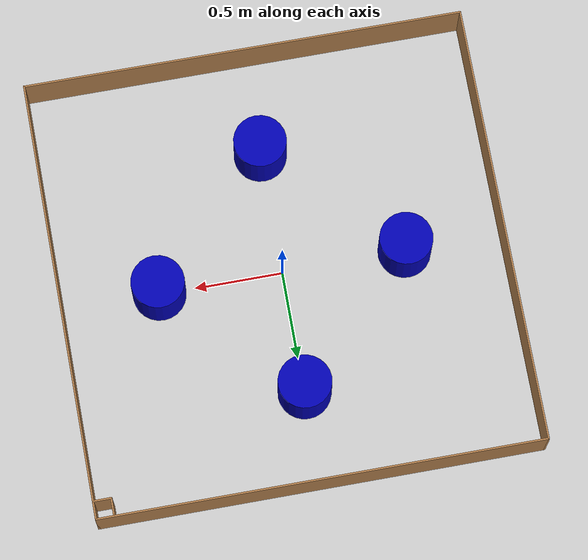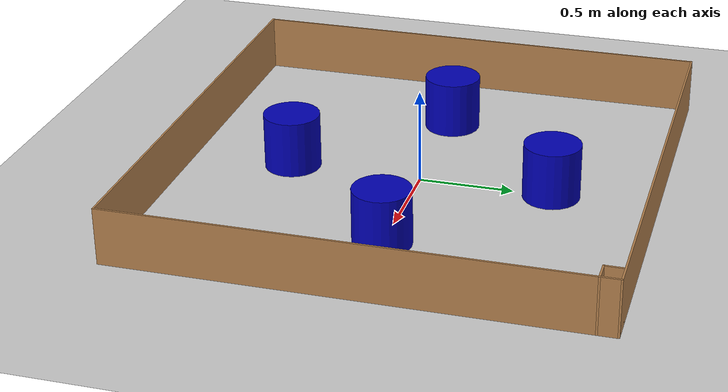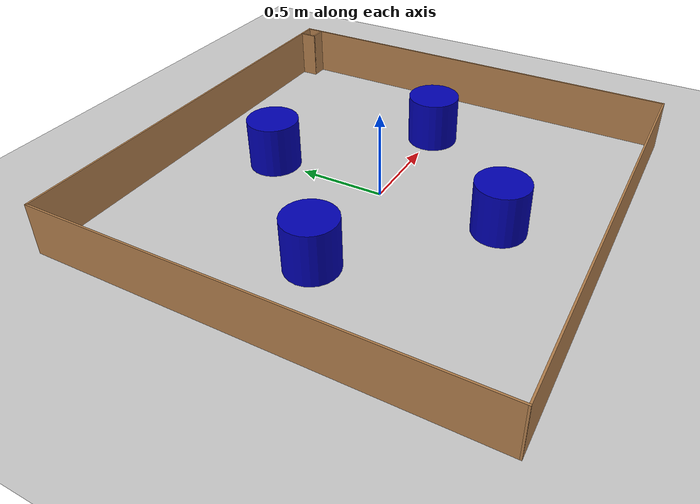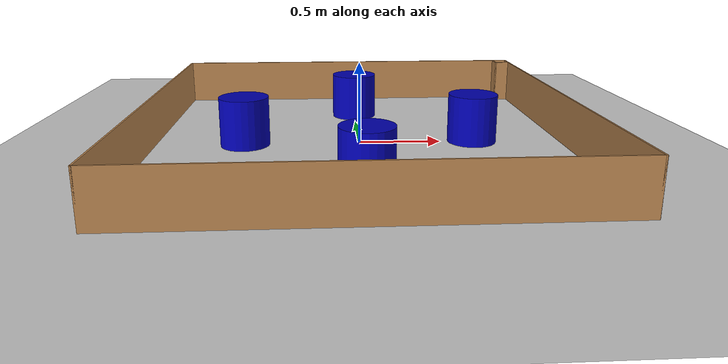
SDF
<sdf version="1.6">
 <world name="default">
  <light name="sun" type="directional">
   <pose>0 0 10 0 -0 0</pose>
   <diffuse>0.8 0.8 0.8 1</diffuse>
   <specular>0.1 0.1 0.1 1</specular>
   <attenuation>
    <range>1000</range>
    <constant>0.9</constant>
    <linear>0.01</linear>
    <quadratic>0.001</quadratic>
   </attenuation>
   <direction>-0.5 0.5 -1</direction>
  </light>
  <model name="ground_plane">
   <static>1</static>
   <link name="link">
    <collision name="collision">
     <geometry><plane><normal>0 0 1</normal><size>100 100</size></plane></geometry>
     <surface><friction><ode><mu>100</mu><mu2>50</mu2></ode></friction></surface>
    </collision>
    <visual name="visual">
     <cast_shadows>0</cast_shadows>
     <geometry><plane><normal>0 0 1</normal><size>100 100</size></plane></geometry>
     <material>
      <script><uri>file://media/materials/scripts/gazebo.material</uri><name>Gazebo/Grey</name></script>
     </material>
    </visual>
   </link>
  </model>
  <gravity>0 0 -9.8</gravity>
  <magnetic_field>6e-06 2.3e-05 -4.2e-05</magnetic_field>
  <atmosphere type="adiabatic"/>
  <physics name="default_physics" default="0" type="ode">
   <max_step_size>0.001</max_step_size>
   <real_time_factor>1</real_time_factor>
   <real_time_update_rate>1000</real_time_update_rate>
  </physics>
  <scene><ambient>0.4 0.4 0.4 1</ambient><background>0.7 0.7 0.7 1</background><shadows>1</shadows></scene>
  <spherical_coordinates>
   <surface_model>EARTH_WGS84</surface_model>
   <latitude_deg>0</latitude_deg>
   <longitude_deg>0</longitude_deg>
   <elevation>0</elevation>
   <heading_deg>0</heading_deg>
  </spherical_coordinates>
  <model name="ParedOrientada">
   <link name="Wall_22">
    <collision name="Wall_22_Collision">
     <geometry><box><size>2.51 0.01 0.3</size></box></geometry>
     <pose>0 0 0.15 0 -0 0</pose>
    </collision>
    <visual name="Wall_22_Visual">
     <pose>0 0 0.15 0 -0 0</pose>
     <geometry><box><size>2.51 0.01 0.3</size></box></geometry>
     <material>
      <script><uri>file://media/materials/scripts/gazebo.material</uri><name>Gazebo/Wood</name></script>
      <ambient>1 1 1 1</ambient>
     </material>
    </visual>
    <pose>-1.25 0 0 0 -0 1.5708</pose>
   </link>
   <link name="Wall_24">
    <collision name="Wall_24_Collision">
     <geometry><box><size>2.51 0.01 0.3</size></box></geometry>
     <pose>0 0 0.15 0 -0 0</pose>
    </collision>
    <visual name="Wall_24_Visual">
     <pose>0 0 0.15 0 -0 0</pose>
     <geometry><box><size>2.51 0.01 0.3</size></box></geometry>
     <material>
      <script><uri>file://media/materials/scripts/gazebo.material</uri><name>Gazebo/Wood</name></script>
      <ambient>1 1 1 1</ambient>
     </material>
    </visual>
    <pose>0 -1.25 0 0 -0 0</pose>
   </link>
   <link name="Wall_28">
    <collision name="Wall_28_Collision">
     <geometry><box><size>2.51 0.01 0.3</size></box></geometry>
     <pose>0 0 0.15 0 -0 0</pose>
    </collision>
    <visual name="Wall_28_Visual">
     <pose>0 0 0.15 0 -0 0</pose>
     <geometry><box><size>2.51 0.01 0.3</size></box></geometry>
     <material>
      <script><uri>file://media/materials/scripts/gazebo.material</uri><name>Gazebo/Wood</name></script>
      <ambient>1 1 1 1</ambient>
     </material>
    </visual>
    <pose>0 1.25 0 0 -0 0</pose>
   </link>
   <link name="Wall_32">
    <collision name="Wall_32_Collision">
     <geometry><box><size>2.51 0.01 0.3</size></box></geometry>
     <pose>0 0 0.15 0 -0 0</pose>
    </collision>
    <visual name="Wall_32_Visual">
     <pose>0 0 0.15 0 -0 0</pose>
     <geometry><box><size>2.51 0.01 0.3</size></box></geometry>
     <material>
      <script><uri>file://media/materials/scripts/gazebo.material</uri><name>Gazebo/Wood</name></script>
      <ambient>1 1 1 1</ambient>
     </material>
    </visual>
    <pose>1.25 0 0 0 -0 1.5708</pose>
   </link>
   <link name="Wall_34">
    <collision name="Wall_34_Collision">
     <geometry><box><size>0.11 0.01 0.3</size></box></geometry>
     <pose>0 0 0.15 0 -0 0</pose>
    </collision>
    <visual name="Wall_34_Visual">
     <pose>0 0 0.15 0 -0 0</pose>
     <geometry><box><size>0.11 0.01 0.3</size></box></geometry>
     <material>
      <script><uri>file://media/materials/scripts/gazebo.material</uri><name>Gazebo/Wood</name></script>
      <ambient>1 1 1 1</ambient>
     </material>
    </visual>
    <pose>1.15 1.2 0 0 0 -1.5708</pose>
   </link>
   <link name="Wall_36">
    <collision name="Wall_36_Collision">
     <geometry><box><size>0.11 0.01 0.3</size></box></geometry>
     <pose>0 0 0.15 0 -0 0</pose>
    </collision>
    <visual name="Wall_36_Visual">
     <pose>0 0 0.15 0 -0 0</pose>
     <geometry><box><size>0.11 0.01 0.3</size></box></geometry>
     <material>
      <script><uri>file://media/materials/scripts/gazebo.material</uri><name>Gazebo/Wood</name></script>
      <ambient>1 1 1 1</ambient>
     </material>
    </visual>
    <pose>1.2 1.15 0 0 -0 0</pose>
   </link>
   <static>1</static>
  </model>
  <model name="Cylinder_2">
   <link name="link">
    <inertial>
     <mass>0.1</mass>
     <inertia><ixx>0.145833</ixx><ixy>0</ixy><ixz>0</ixz><iyy>0.145833</iyy><iyz>0</iyz><izz>0.125</izz></inertia>
    </inertial>
    <visual name="visual">
     <geometry><cylinder><radius>0.15</radius><length>0.3</length></cylinder></geometry>
     <material>
      <script><name>Gazebo/Grey</name><uri>file://media/materials/scripts/gazebo.material</uri></script>
      <ambient>0.3 0.3 0.3 1</ambient>
      <diffuse>0 0 0.7 1</diffuse>
      <specular>0.01 0.01 0.01 1</specular>
      <emissive>0 0 0 1</emissive>
      <shader type="vertex"><normal_map>__default__</normal_map></shader>
     </material>
    </visual>
    <collision name="collision">
     <geometry><cylinder><radius>0.15</radius><length>0.3</length></cylinder></geometry>
     <surface>
      <friction>
       <ode><mu>1</mu><mu2>1</mu2><fdir1>0 0 0</fdir1><slip1>0</slip1><slip2>0</slip2></ode>
       <torsional>
        <coefficient>1</coefficient>
        <patch_radius>0</patch_radius>
        <surface_radius>0</surface_radius>
        <use_patch_radius>1</use_patch_radius>
        <ode><slip>0</slip></ode>
       </torsional>
      </friction>
      <bounce><restitution_coefficient>0</restitution_coefficient><threshold>1e+06</threshold></bounce>
      <contact>
       <collide_without_contact>0</collide_without_contact>
       <collide_without_contact_bitmask>1</collide_without_contact_bitmask>
       <collide_bitmask>1</collide_bitmask>
       <ode>
        <soft_cfm>0</soft_cfm>
        <soft_erp>0.2</soft_erp>
        <kp>1e+13</kp>
        <kd>1</kd>
        <max_vel>0.01</max_vel>
        <min_depth>0</min_depth>
       </ode>
       <bullet>
        <split_impulse>1</split_impulse>
        <split_impulse_penetration_threshold>-0.01</split_impulse_penetration_threshold>
        <soft_cfm>0</soft_cfm>
        <soft_erp>0.2</soft_erp>
        <kp>1e+13</kp>
        <kd>1</kd>
       </bullet>
      </contact>
     </surface>
    </collision>
   </link>
   <static>0</static>
   <pose>0 0.7 0.149994 0 -0 6e-06</pose>
  </model>
  <model name="Cylinder_2_clone">
   <link name="link">
    <inertial>
     <mass>0.1</mass>
     <inertia><ixx>0.145833</ixx><ixy>0</ixy><ixz>0</ixz><iyy>0.145833</iyy><iyz>0</iyz><izz>0.125</izz></inertia>
    </inertial>
    <visual name="visual">
     <geometry><cylinder><radius>0.15</radius><length>0.3</length></cylinder></geometry>
     <material>
      <script><name>Gazebo/Grey</name><uri>file://media/materials/scripts/gazebo.material</uri></script>
      <ambient>0.3 0.3 0.3 1</ambient>
      <diffuse>0 0 0.7 1</diffuse>
      <specular>0.01 0.01 0.01 1</specular>
      <emissive>0 0 0 1</emissive>
      <shader type="vertex"><normal_map>__default__</normal_map></shader>
     </material>
    </visual>
    <collision name="collision">
     <geometry><cylinder><radius>0.15</radius><length>0.3</length></cylinder></geometry>
     <surface>
      <friction>
       <ode><mu>1</mu><mu2>1</mu2><fdir1>0 0 0</fdir1><slip1>0</slip1><slip2>0</slip2></ode>
       <torsional>
        <coefficient>1</coefficient>
        <patch_radius>0</patch_radius>
        <surface_radius>0</surface_radius>
        <use_patch_radius>1</use_patch_radius>
        <ode><slip>0</slip></ode>
       </torsional>
      </friction>
      <bounce><restitution_coefficient>0</restitution_coefficient><threshold>1e+06</threshold></bounce>
      <contact>
       <collide_without_contact>0</collide_without_contact>
       <collide_without_contact_bitmask>1</collide_without_contact_bitmask>
       <collide_bitmask>1</collide_bitmask>
       <ode>
        <soft_cfm>0</soft_cfm>
        <soft_erp>0.2</soft_erp>
        <kp>1e+13</kp>
        <kd>1</kd>
        <max_vel>0.01</max_vel>
        <min_depth>0</min_depth>
       </ode>
       <bullet>
        <split_impulse>1</split_impulse>
        <split_impulse_penetration_threshold>-0.01</split_impulse_penetration_threshold>
        <soft_cfm>0</soft_cfm>
        <soft_erp>0.2</soft_erp>
        <kp>1e+13</kp>
        <kd>1</kd>
       </bullet>
      </contact>
     </surface>
    </collision>
   </link>
   <static>0</static>
   <pose>0 -0.7 0.149998 0 -0 9e-06</pose>
  </model>
  <model name="Cylinder_2_clone_clone">
   <link name="link">
    <inertial>
     <mass>0.1</mass>
     <inertia><ixx>0.145833</ixx><ixy>0</ixy><ixz>0</ixz><iyy>0.145833</iyy><iyz>0</iyz><izz>0.125</izz></inertia>
    </inertial>
    <visual name="visual">
     <geometry><cylinder><radius>0.15</radius><length>0.3</length></cylinder></geometry>
     <material>
      <script><name>Gazebo/Grey</name><uri>file://media/materials/scripts/gazebo.material</uri></script>
      <ambient>0.3 0.3 0.3 1</ambient>
      <diffuse>0 0 0.7 1</diffuse>
      <specular>0.01 0.01 0.01 1</specular>
      <emissive>0 0 0 1</emissive>
      <shader type="vertex"><normal_map>__default__</normal_map></shader>
     </material>
    </visual>
    <collision name="collision">
     <geometry><cylinder><radius>0.15</radius><length>0.3</length></cylinder></geometry>
     <surface>
      <friction>
       <ode><mu>1</mu><mu2>1</mu2><fdir1>0 0 0</fdir1><slip1>0</slip1><slip2>0</slip2></ode>
       <torsional>
        <coefficient>1</coefficient>
        <patch_radius>0</patch_radius>
        <surface_radius>0</surface_radius>
        <use_patch_radius>1</use_patch_radius>
        <ode><slip>0</slip></ode>
       </torsional>
      </friction>
      <bounce><restitution_coefficient>0</restitution_coefficient><threshold>1e+06</threshold></bounce>
      <contact>
       <collide_without_contact>0</collide_without_contact>
       <collide_without_contact_bitmask>1</collide_without_contact_bitmask>
       <collide_bitmask>1</collide_bitmask>
       <ode>
        <soft_cfm>0</soft_cfm>
        <soft_erp>0.2</soft_erp>
        <kp>1e+13</kp>
        <kd>1</kd>
        <max_vel>0.01</max_vel>
        <min_depth>0</min_depth>
       </ode>
       <bullet>
        <split_impulse>1</split_impulse>
        <split_impulse_penetration_threshold>-0.01</split_impulse_penetration_threshold>
        <soft_cfm>0</soft_cfm>
        <soft_erp>0.2</soft_erp>
        <kp>1e+13</kp>
        <kd>1</kd>
       </bullet>
      </contact>
     </surface>
    </collision>
   </link>
   <static>0</static>
   <pose>-0.7 0 0.149997 1e-06 -0 9e-06</pose>
  </model>
  <model name="Cylinder_2_clone_clone_clone">
   <link name="link">
    <inertial>
     <mass>0.1</mass>
     <inertia><ixx>0.145833</ixx><ixy>0</ixy><ixz>0</ixz><iyy>0.145833</iyy><iyz>0</iyz><izz>0.125</izz></inertia>
    </inertial>
    <visual name="visual">
     <geometry><cylinder><radius>0.15</radius><length>0.3</length></cylinder></geometry>
     <material>
      <script><name>Gazebo/Grey</name><uri>file://media/materials/scripts/gazebo.material</uri></script>
      <ambient>0.3 0.3 0.3 1</ambient>
      <diffuse>0 0 0.7 1</diffuse>
      <specular>0.01 0.01 0.01 1</specular>
      <emissive>0 0 0 1</emissive>
      <shader type="vertex"><normal_map>__default__</normal_map></shader>
     </material>
    </visual>
    <collision name="collision">
     <geometry><cylinder><radius>0.15</radius><length>0.3</length></cylinder></geometry>
     <surface>
      <friction>
       <ode><mu>1</mu><mu2>1</mu2><fdir1>0 0 0</fdir1><slip1>0</slip1><slip2>0</slip2></ode>
       <torsional>
        <coefficient>1</coefficient>
        <patch_radius>0</patch_radius>
        <surface_radius>0</surface_radius>
        <use_patch_radius>1</use_patch_radius>
        <ode><slip>0</slip></ode>
       </torsional>
      </friction>
      <bounce><restitution_coefficient>0</restitution_coefficient><threshold>1e+06</threshold></bounce>
      <contact>
       <collide_without_contact>0</collide_without_contact>
       <collide_without_contact_bitmask>1</collide_without_contact_bitmask>
       <collide_bitmask>1</collide_bitmask>
       <ode>
        <soft_cfm>0</soft_cfm>
        <soft_erp>0.2</soft_erp>
        <kp>1e+13</kp>
        <kd>1</kd>
        <max_vel>0.01</max_vel>
        <min_depth>0</min_depth>
       </ode>
       <bullet>
        <split_impulse>1</split_impulse>
        <split_impulse_penetration_threshold>-0.01</split_impulse_penetration_threshold>
        <soft_cfm>0</soft_cfm>
        <soft_erp>0.2</soft_erp>
        <kp>1e+13</kp>
        <kd>1</kd>
       </bullet>
      </contact>
     </surface>
    </collision>
   </link>
   <static>0</static>
   <pose>0.7 0 0.14999 0 -0 9e-06</pose>
  </model>
 </world>
</sdf>
